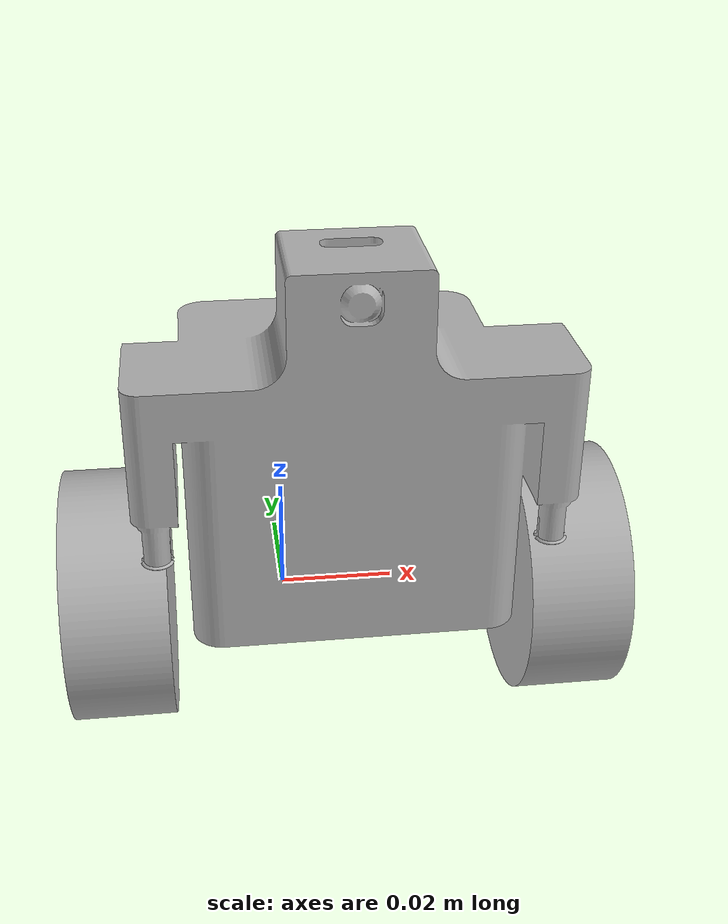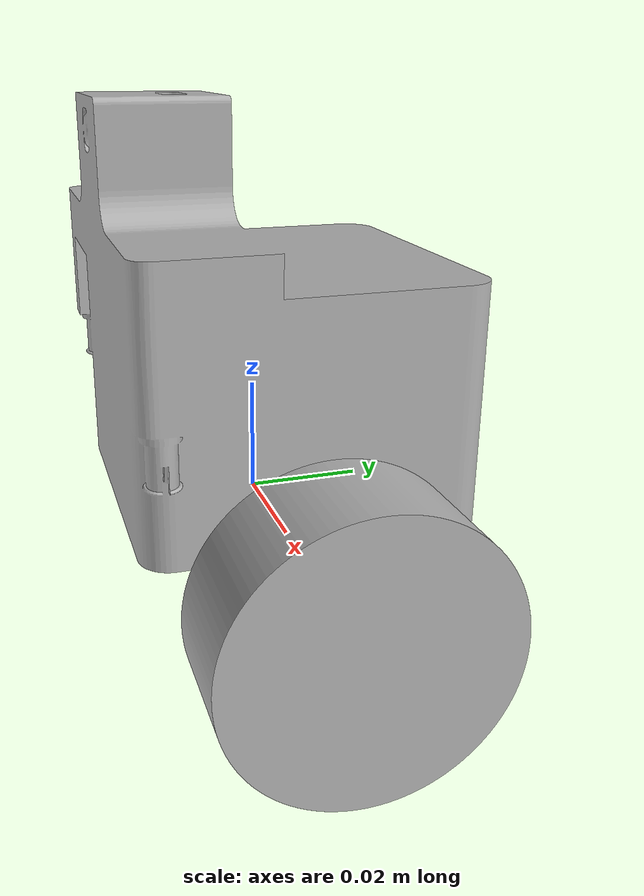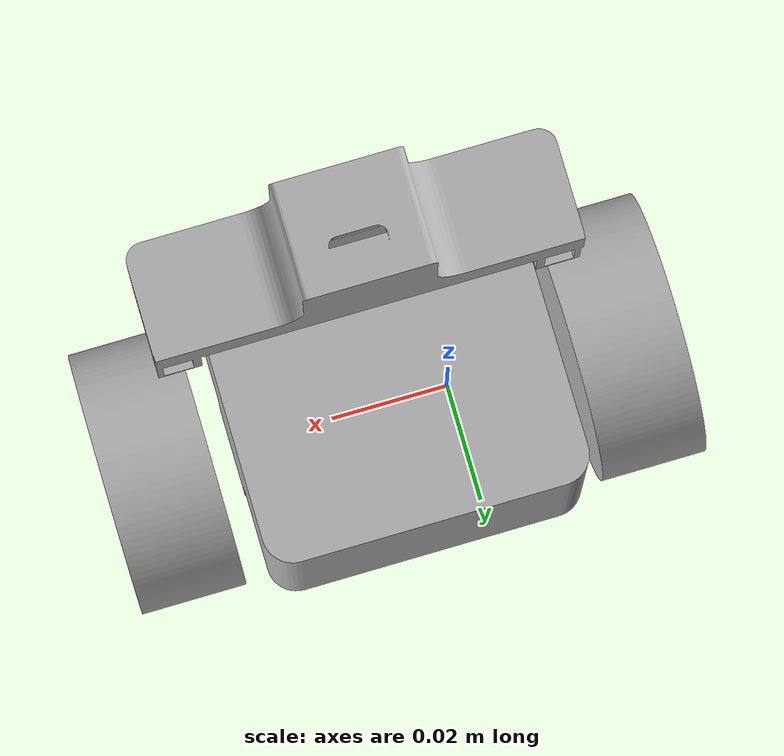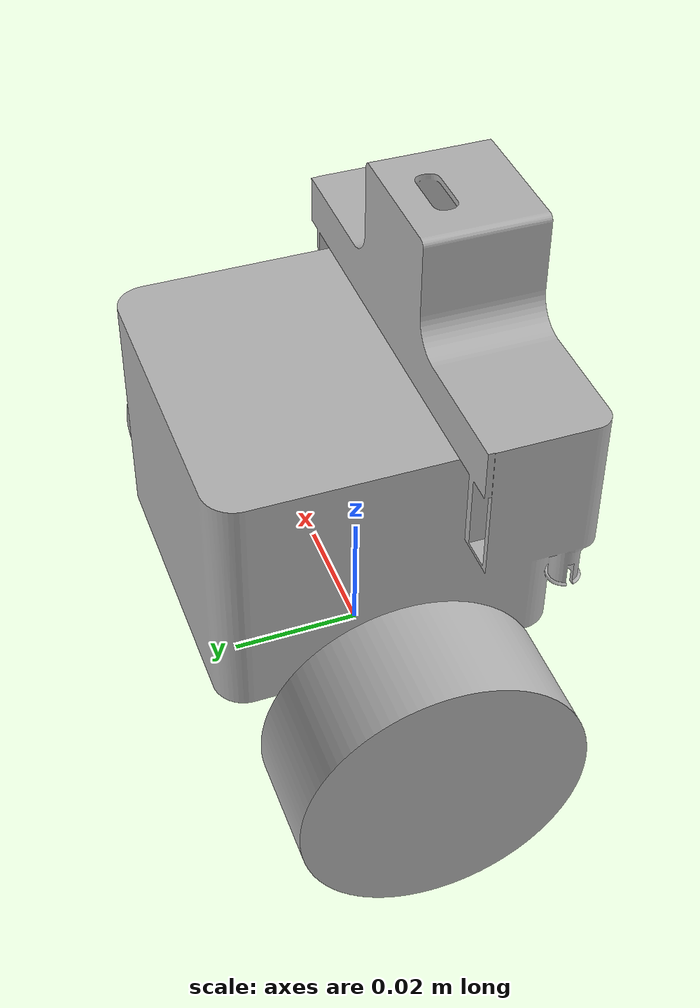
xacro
<?xml version="1.0" ?>
<robot name="bala2-fire-simplified" xmlns:xacro="http://www.ros.org/wiki/xacro">

<xacro:include filename="$(find bala2-fire-simplified_description)/urdf/materials.xacro" />
<xacro:include filename="$(find bala2-fire-simplified_description)/urdf/bala2-fire-simplified.ros2control" />
<xacro:include filename="$(find bala2-fire-simplified_description)/urdf/bala2-fire-simplified.gazebo" />
<link name="base_link">
  <inertial>
    <origin xyz="0.010485768801521564 -0.0018516108141509158 0.025729756326146033" rpy="0 0 0"/>
    <mass value="1.0557705932962271"/>
    <inertia ixx="0.000477" iyy="0.000501" izz="0.000532" ixy="-0.0" iyz="4.5e-05" ixz="0.0"/>
  </inertial>
  <visual>
    <origin xyz="0 0 0" rpy="0 0 0"/>
    <geometry>
      <mesh filename="file://$(find bala2-fire-simplified_description)/meshes/base_link.stl" scale="0.001 0.001 0.001"/>
    </geometry>
    <material name="silver"/>
  </visual>
  <collision>
    <origin xyz="0 0 0" rpy="0 0 0"/>
    <geometry>
      <mesh filename="file://$(find bala2-fire-simplified_description)/meshes/base_link.stl" scale="0.001 0.001 0.001"/>
    </geometry>
  </collision>
</link>

<link name="wheel_right_1_1">
  <inertial>
    <origin xyz="-0.01300045650479206 9.928023148357377e-18 1.489203472253608e-17" rpy="0 0 0"/>
    <mass value="0.22472793998832039"/>
    <inertia ixx="5.7e-05" iyy="3.5e-05" izz="3.5e-05" ixy="0.0" iyz="0.0" ixz="-0.0"/>
  </inertial>
  <visual>
    <origin xyz="0.016511 0.0 0.0" rpy="0 0 0"/>
    <geometry>
      <mesh filename="file://$(find bala2-fire-simplified_description)/meshes/wheel_right_1_1.stl" scale="0.001 0.001 0.001"/>
    </geometry>
    <material name="silver"/>
  </visual>
  <collision>
    <origin xyz="0.016511 0.0 0.0" rpy="0 0 0"/>
    <geometry>
      <mesh filename="file://$(find bala2-fire-simplified_description)/meshes/wheel_right_1_1.stl" scale="0.001 0.001 0.001"/>
    </geometry>
  </collision>
</link>

<link name="wheel_left_1_1">
  <inertial>
    <origin xyz="0.012999543495207933 2.5471145493109527e-17 6.842917794003691e-18" rpy="0 0 0"/>
    <mass value="0.22472793998832039"/>
    <inertia ixx="5.7e-05" iyy="3.5e-05" izz="3.5e-05" ixy="-0.0" iyz="0.0" ixz="0.0"/>
  </inertial>
  <visual>
    <origin xyz="-0.037489 -0.0 0.0" rpy="0 0 0"/>
    <geometry>
      <mesh filename="file://$(find bala2-fire-simplified_description)/meshes/wheel_left_1_1.stl" scale="0.001 0.001 0.001"/>
    </geometry>
    <material name="silver"/>
  </visual>
  <collision>
    <origin xyz="-0.037489 -0.0 0.0" rpy="0 0 0"/>
    <geometry>
      <mesh filename="file://$(find bala2-fire-simplified_description)/meshes/wheel_left_1_1.stl" scale="0.001 0.001 0.001"/>
    </geometry>
  </collision>
</link>

<joint name="Starr 4" type="fixed">
  <origin xyz="-0.016511 0.0 0.0" rpy="0 0 0"/>
  <parent link="base_link"/>
  <child link="wheel_right_1_1"/>
</joint>

<joint name="Starr 5" type="fixed">
  <origin xyz="0.037489 0.0 0.0" rpy="0 0 0"/>
  <parent link="base_link"/>
  <child link="wheel_left_1_1"/>
</joint>

</robot>

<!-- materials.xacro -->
<robot name="bala2-fire-simplified" xmlns:xacro="http://www.ros.org/wiki/xacro" >

<material name="silver">
  <color rgba="0.700 0.700 0.700 1.000"/>
</material>

</robot>

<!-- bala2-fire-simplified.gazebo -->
<robot name="bala2-fire-simplified" xmlns:xacro="http://www.ros.org/wiki/xacro" >

<xacro:property name="body_color" value="Gazebo/Silver" />

<gazebo reference="base_link">
  <material>${body_color}</material>
  <mu1>0.2</mu1>
  <mu2>0.2</mu2>
  <self_collide>true</self_collide>
  <gravity>true</gravity>
</gazebo>

<gazebo reference="wheel_right_1_1">
  <material>${body_color}</material>
  <mu1>0.2</mu1>
  <mu2>0.2</mu2>
  <self_collide>true</self_collide>
</gazebo>

<gazebo reference="wheel_left_1_1">
  <material>${body_color}</material>
  <mu1>0.2</mu1>
  <mu2>0.2</mu2>
  <self_collide>true</self_collide>
</gazebo>

</robot>
